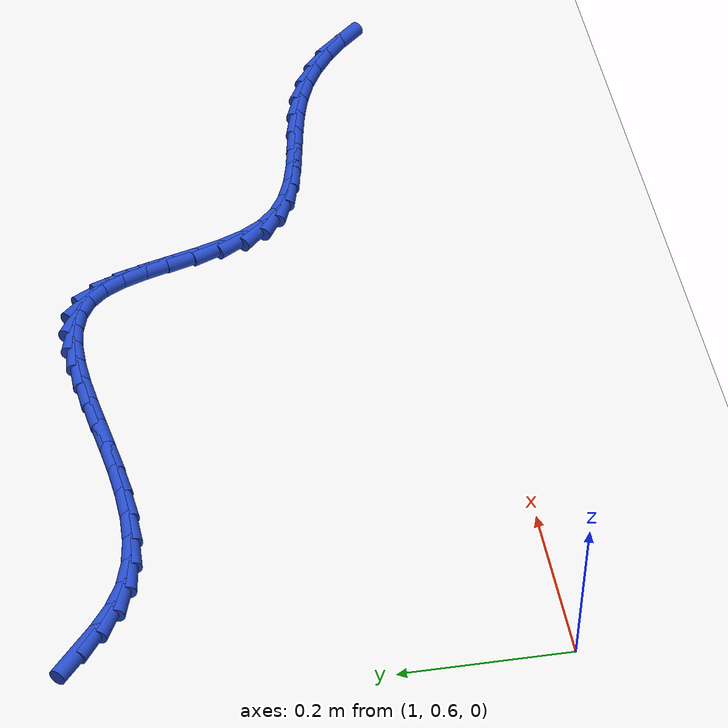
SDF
<sdf version="1.6">
 <world name="default">
  <model name="ground_plane">
   <static>1</static>
   <link name="link">
    <collision name="collision">
     <geometry><plane><normal>0 0 1</normal><size>100 100</size></plane></geometry>
     <surface><friction><ode><mu>100</mu><mu2>50</mu2></ode></friction></surface>
    </collision>
    <visual name="visual">
     <cast_shadows>0</cast_shadows>
     <geometry><plane><normal>0 0 1</normal><size>100 100</size></plane></geometry>
     <material>
      <script><uri>file://media/materials/scripts/gazebo.material</uri><name>Gazebo/WhiteGlow</name></script>
     </material>
    </visual>
   </link>
  </model>
  <model name="line">
   <link name="link_55">
    <pose>1.0755747861341562 1.1382320605853902 0.01 0 1.57 -0.7107506771846369</pose>
    <collision name="collision">
     <geometry><cylinder><radius>0.01</radius><length>0.08</length></cylinder></geometry>
    </collision>
    <visual name="visual">
     <material>
      <script><name>Gazebo/Blue</name><uri>file://media/materials/scripts/gazebo.material</uri></script>
     </material>
     <geometry><cylinder><radius>0.01</radius><length>0.08</length></cylinder></geometry>
    </visual>
   </link>
   <link name="link_56">
    <pose>1.101643030284589 1.115791609423741 0.01 0 1.57 -0.6357924272160159</pose>
    <collision name="collision">
     <geometry><cylinder><radius>0.01</radius><length>0.08</length></cylinder></geometry>
    </collision>
    <visual name="visual">
     <material>
      <script><name>Gazebo/Blue</name><uri>file://media/materials/scripts/gazebo.material</uri></script>
     </material>
     <geometry><cylinder><radius>0.01</radius><length>0.08</length></cylinder></geometry>
    </visual>
   </link>
   <link name="link_57">
    <pose>1.1292929913588372 1.0953852694056572 0.01 0 1.57 -0.4900527705464352</pose>
    <collision name="collision">
     <geometry><cylinder><radius>0.01</radius><length>0.08</length></cylinder></geometry>
    </collision>
    <visual name="visual">
     <material>
      <script><name>Gazebo/Blue</name><uri>file://media/materials/scripts/gazebo.material</uri></script>
     </material>
     <geometry><cylinder><radius>0.01</radius><length>0.08</length></cylinder></geometry>
    </visual>
   </link>
   <link name="link_58">
    <pose>1.1591211371965457 1.0794732680540715 0.01 0 1.57 -0.30864110166584946</pose>
    <collision name="collision">
     <geometry><cylinder><radius>0.01</radius><length>0.08</length></cylinder></geometry>
    </collision>
    <visual name="visual">
     <material>
      <script><name>Gazebo/Blue</name><uri>file://media/materials/scripts/gazebo.material</uri></script>
     </material>
     <geometry><cylinder><radius>0.01</radius><length>0.08</length></cylinder></geometry>
    </visual>
   </link>
   <link name="link_59">
    <pose>1.1913093194147997 1.0692107156601955 0.01 0 1.57 -0.15479637146300426</pose>
    <collision name="collision">
     <geometry><cylinder><radius>0.01</radius><length>0.08</length></cylinder></geometry>
    </collision>
    <visual name="visual">
     <material>
      <script><name>Gazebo/Blue</name><uri>file://media/materials/scripts/gazebo.material</uri></script>
     </material>
     <geometry><cylinder><radius>0.01</radius><length>0.08</length></cylinder></geometry>
    </visual>
   </link>
   <link name="link_60">
    <pose>1.2254456969182623 1.0638839133679794 0.01 0 1.57 -0.03503644360958951</pose>
    <collision name="collision">
     <geometry><cylinder><radius>0.01</radius><length>0.08</length></cylinder></geometry>
    </collision>
    <visual name="visual">
     <material>
      <script><name>Gazebo/Blue</name><uri>file://media/materials/scripts/gazebo.material</uri></script>
     </material>
     <geometry><cylinder><radius>0.01</radius><length>0.08</length></cylinder></geometry>
    </visual>
   </link>
   <link name="link_61">
    <pose>1.2610726810801538 1.0626351595343433 0.01 0 1.57 0.053728732022189224</pose>
    <collision name="collision">
     <geometry><cylinder><radius>0.01</radius><length>0.08</length></cylinder></geometry>
    </collision>
    <visual name="visual">
     <material>
      <script><name>Gazebo/Blue</name><uri>file://media/materials/scripts/gazebo.material</uri></script>
     </material>
     <geometry><cylinder><radius>0.01</radius><length>0.08</length></cylinder></geometry>
    </visual>
   </link>
   <link name="link_62">
    <pose>1.2977326832736926 1.064606752516207 0.01 0 1.57 0.11587943171663884</pose>
    <collision name="collision">
     <geometry><cylinder><radius>0.01</radius><length>0.08</length></cylinder></geometry>
    </collision>
    <visual name="visual">
     <material>
      <script><name>Gazebo/Blue</name><uri>file://media/materials/scripts/gazebo.material</uri></script>
     </material>
     <geometry><cylinder><radius>0.01</radius><length>0.08</length></cylinder></geometry>
    </visual>
   </link>
   <link name="link_63">
    <pose>1.3349681148720989 1.0689409906704912 0.01 0 1.57 0.15506816042027194</pose>
    <collision name="collision">
     <geometry><cylinder><radius>0.01</radius><length>0.08</length></cylinder></geometry>
    </collision>
    <visual name="visual">
     <material>
      <script><name>Gazebo/Blue</name><uri>file://media/materials/scripts/gazebo.material</uri></script>
     </material>
     <geometry><cylinder><radius>0.01</radius><length>0.08</length></cylinder></geometry>
    </visual>
   </link>
   <link name="link_64">
    <pose>1.3723213872485907 1.074780172354115 0.01 0 1.57 0.1734830740059691</pose>
    <collision name="collision">
     <geometry><cylinder><radius>0.01</radius><length>0.08</length></cylinder></geometry>
    </collision>
    <visual name="visual">
     <material>
      <script><name>Gazebo/Blue</name><uri>file://media/materials/scripts/gazebo.material</uri></script>
     </material>
     <geometry><cylinder><radius>0.01</radius><length>0.08</length></cylinder></geometry>
    </visual>
   </link>
   <link name="link_65">
    <pose>1.4093349117763887 1.0812665959239998 0.01 0 1.57 0.1715876228042831</pose>
    <collision name="collision">
     <geometry><cylinder><radius>0.01</radius><length>0.08</length></cylinder></geometry>
    </collision>
    <visual name="visual">
     <material>
      <script><name>Gazebo/Blue</name><uri>file://media/materials/scripts/gazebo.material</uri></script>
     </material>
     <geometry><cylinder><radius>0.01</radius><length>0.08</length></cylinder></geometry>
    </visual>
   </link>
   <link name="link_66">
    <pose>1.445551099828712 1.0875425597370647 0.01 0 1.57 0.1478719134858487</pose>
    <collision name="collision">
     <geometry><cylinder><radius>0.01</radius><length>0.08</length></cylinder></geometry>
    </collision>
    <visual name="visual">
     <material>
      <script><name>Gazebo/Blue</name><uri>file://media/materials/scripts/gazebo.material</uri></script>
     </material>
     <geometry><cylinder><radius>0.01</radius><length>0.08</length></cylinder></geometry>
    </visual>
   </link>
   <link name="link_67">
    <pose>1.48051236277878 1.0927503621502306 0.01 0 1.57 0.09838993190267431</pose>
    <collision name="collision">
     <geometry><cylinder><radius>0.01</radius><length>0.08</length></cylinder></geometry>
    </collision>
    <visual name="visual">
     <material>
      <script><name>Gazebo/Blue</name><uri>file://media/materials/scripts/gazebo.material</uri></script>
     </material>
     <geometry><cylinder><radius>0.01</radius><length>0.08</length></cylinder></geometry>
    </visual>
   </link>
   <link name="link_68">
    <pose>1.513761111999812 1.0960323015204174 0.01 0 1.57 0.016034545317960506</pose>
    <collision name="collision">
     <geometry><cylinder><radius>0.01</radius><length>0.08</length></cylinder></geometry>
    </collision>
    <visual name="visual">
     <material>
      <script><name>Gazebo/Blue</name><uri>file://media/materials/scripts/gazebo.material</uri></script>
     </material>
     <geometry><cylinder><radius>0.01</radius><length>0.08</length></cylinder></geometry>
    </visual>
   </link>
   <link name="link_69">
    <pose>1.5448397588650271 1.0965306762045448 0.01 0 1.57 -0.11002091675937706</pose>
    <collision name="collision">
     <geometry><cylinder><radius>0.01</radius><length>0.08</length></cylinder></geometry>
    </collision>
    <visual name="visual">
     <material>
      <script><name>Gazebo/Blue</name><uri>file://media/materials/scripts/gazebo.material</uri></script>
     </material>
     <geometry><cylinder><radius>0.01</radius><length>0.08</length></cylinder></geometry>
    </visual>
   </link>
   <link name="link_70">
    <pose>1.5732907147476451 1.0933877845595334 0.01 0 1.57 -0.2926194399520623</pose>
    <collision name="collision">
     <geometry><cylinder><radius>0.01</radius><length>0.08</length></cylinder></geometry>
    </collision>
    <visual name="visual">
     <material>
      <script><name>Gazebo/Blue</name><uri>file://media/materials/scripts/gazebo.material</uri></script>
     </material>
     <geometry><cylinder><radius>0.01</radius><length>0.08</length></cylinder></geometry>
    </visual>
   </link>
   <link name="link_71">
    <pose>1.5986563910208855 1.0857459249423036 0.01 0 1.57 -0.5372071749215995</pose>
    <collision name="collision">
     <geometry><cylinder><radius>0.01</radius><length>0.08</length></cylinder></geometry>
    </collision>
    <visual name="visual">
     <material>
      <script><name>Gazebo/Blue</name><uri>file://media/materials/scripts/gazebo.material</uri></script>
     </material>
     <geometry><cylinder><radius>0.01</radius><length>0.08</length></cylinder></geometry>
    </visual>
   </link>
   <link name="link_72">
    <pose>1.6204791990579672 1.0727473957097748 0.01 0 1.57 -0.8224400972214115</pose>
    <collision name="collision">
     <geometry><cylinder><radius>0.01</radius><length>0.08</length></cylinder></geometry>
    </collision>
    <visual name="visual">
     <material>
      <script><name>Gazebo/Blue</name><uri>file://media/materials/scripts/gazebo.material</uri></script>
     </material>
     <geometry><cylinder><radius>0.01</radius><length>0.08</length></cylinder></geometry>
    </visual>
   </link>
   <link name="link_73">
    <pose>1.6383087406810088 1.0535455107085474 0.01 0 1.57 -1.0672424212627662</pose>
    <collision name="collision">
     <geometry><cylinder><radius>0.01</radius><length>0.08</length></cylinder></geometry>
    </collision>
    <visual name="visual">
     <material>
      <script><name>Gazebo/Blue</name><uri>file://media/materials/scripts/gazebo.material</uri></script>
     </material>
     <geometry><cylinder><radius>0.01</radius><length>0.08</length></cylinder></geometry>
    </visual>
   </link>
   <link name="link_74">
    <pose>1.652278671227364 1.0281883311869247 0.01 0 1.57 -1.2111819096715102</pose>
    <collision name="collision">
     <geometry><cylinder><radius>0.01</radius><length>0.08</length></cylinder></geometry>
    </collision>
    <visual name="visual">
     <material>
      <script><name>Gazebo/Blue</name><uri>file://media/materials/scripts/gazebo.material</uri></script>
     </material>
     <geometry><cylinder><radius>0.01</radius><length>0.08</length></cylinder></geometry>
    </visual>
   </link>
   <link name="link_75">
    <pose>1.6635286808114067 0.9982651247711927 0.01 0 1.57 -1.2808809340595608</pose>
    <collision name="collision">
     <geometry><cylinder><radius>0.01</radius><length>0.08</length></cylinder></geometry>
    </collision>
    <visual name="visual">
     <material>
      <script><name>Gazebo/Blue</name><uri>file://media/materials/scripts/gazebo.material</uri></script>
     </material>
     <geometry><cylinder><radius>0.01</radius><length>0.08</length></cylinder></geometry>
    </visual>
   </link>
   <link name="link_76">
    <pose>1.6732979508051204 0.9655175758472576 0.01 0 1.57 -1.2962737377099787</pose>
    <collision name="collision">
     <geometry><cylinder><radius>0.01</radius><length>0.08</length></cylinder></geometry>
    </collision>
    <visual name="visual">
     <material>
      <script><name>Gazebo/Blue</name><uri>file://media/materials/scripts/gazebo.material</uri></script>
     </material>
     <geometry><cylinder><radius>0.01</radius><length>0.08</length></cylinder></geometry>
    </visual>
   </link>
   <link name="link_77">
    <pose>1.682825662580487 0.9316873688010251 0.01 0 1.57 -1.2635412335321563</pose>
    <collision name="collision">
     <geometry><cylinder><radius>0.01</radius><length>0.08</length></cylinder></geometry>
    </collision>
    <visual name="visual">
     <material>
      <script><name>Gazebo/Blue</name><uri>file://media/materials/scripts/gazebo.material</uri></script>
     </material>
     <geometry><cylinder><radius>0.01</radius><length>0.08</length></cylinder></geometry>
    </visual>
   </link>
   <link name="link_78">
    <pose>1.6933509975094878 0.8985161880183997 0.01 0 1.57 -1.1776370423078908</pose>
    <collision name="collision">
     <geometry><cylinder><radius>0.01</radius><length>0.08</length></cylinder></geometry>
    </collision>
    <visual name="visual">
     <material>
      <script><name>Gazebo/Blue</name><uri>file://media/materials/scripts/gazebo.material</uri></script>
     </material>
     <geometry><cylinder><radius>0.01</radius><length>0.08</length></cylinder></geometry>
    </visual>
   </link>
   <link name="link_79">
    <pose>1.7061131369641056 0.8677457178852884 0.01 0 1.57 -1.023193186918059</pose>
    <collision name="collision">
     <geometry><cylinder><radius>0.01</radius><length>0.08</length></cylinder></geometry>
    </collision>
    <visual name="visual">
     <material>
      <script><name>Gazebo/Blue</name><uri>file://media/materials/scripts/gazebo.material</uri></script>
     </material>
     <geometry><cylinder><radius>0.01</radius><length>0.08</length></cylinder></geometry>
    </visual>
   </link>
   <link name="link_80">
    <pose>1.7223512623163224 0.8411176427875953 0.01 0 1.57 -0.789614595394106</pose>
    <collision name="collision">
     <geometry><cylinder><radius>0.01</radius><length>0.08</length></cylinder></geometry>
    </collision>
    <visual name="visual">
     <material>
      <script><name>Gazebo/Blue</name><uri>file://media/materials/scripts/gazebo.material</uri></script>
     </material>
     <geometry><cylinder><radius>0.01</radius><length>0.08</length></cylinder></geometry>
    </visual>
   </link>
   <link name="link_81">
    <pose>1.743145431809231 0.8201473753428853 0.01 0 1.57 -0.5566601003847765</pose>
    <collision name="collision">
     <geometry><cylinder><radius>0.01</radius><length>0.08</length></cylinder></geometry>
    </collision>
    <visual name="visual">
     <material>
      <script><name>Gazebo/Blue</name><uri>file://media/materials/scripts/gazebo.material</uri></script>
     </material>
     <geometry><cylinder><radius>0.01</radius><length>0.08</length></cylinder></geometry>
    </visual>
   </link>
   <link name="link_82">
    <pose>1.76827908080252 0.8045065411922556 0.01 0 1.57 -0.38317019445696415</pose>
    <collision name="collision">
     <geometry><cylinder><radius>0.01</radius><length>0.08</length></cylinder></geometry>
    </collision>
    <visual name="visual">
     <material>
      <script><name>Gazebo/Blue</name><uri>file://media/materials/scripts/gazebo.material</uri></script>
     </material>
     <geometry><cylinder><radius>0.01</radius><length>0.08</length></cylinder></geometry>
    </visual>
   </link>
   <link name="link_83">
    <pose>1.7969037011812574 0.7929681476018859 0.01 0 1.57 -0.27049728993500377</pose>
    <collision name="collision">
     <geometry><cylinder><radius>0.01</radius><length>0.08</length></cylinder></geometry>
    </collision>
    <visual name="visual">
     <material>
      <script><name>Gazebo/Blue</name><uri>file://media/materials/scripts/gazebo.material</uri></script>
     </material>
     <geometry><cylinder><radius>0.01</radius><length>0.08</length></cylinder></geometry>
    </visual>
   </link>
   <link name="link_84">
    <pose>1.8281665382837275 0.7842991632836813 0.01 0 1.57 -0.2096703374839424</pose>
    <collision name="collision">
     <geometry><cylinder><radius>0.01</radius><length>0.08</length></cylinder></geometry>
    </collision>
    <visual name="visual">
     <material>
      <script><name>Gazebo/Blue</name><uri>file://media/materials/scripts/gazebo.material</uri></script>
     </material>
     <geometry><cylinder><radius>0.01</radius><length>0.08</length></cylinder></geometry>
    </visual>
   </link>
   <link name="link_85">
    <pose>1.861214837448216 0.7772665569495478 0.01 0 1.57 -0.1926672878413611</pose>
    <collision name="collision">
     <geometry><cylinder><radius>0.01</radius><length>0.08</length></cylinder></geometry>
    </collision>
    <visual name="visual">
     <material>
      <script><name>Gazebo/Blue</name><uri>file://media/materials/scripts/gazebo.material</uri></script>
     </material>
     <geometry><cylinder><radius>0.01</radius><length>0.08</length></cylinder></geometry>
    </visual>
   </link>
   <link name="link_86">
    <pose>1.8951958440130063 0.7706372973113904 0.01 0 1.57 -0.21558490034325437</pose>
    <collision name="collision">
     <geometry><cylinder><radius>0.01</radius><length>0.08</length></cylinder></geometry>
    </collision>
    <visual name="visual">
     <material>
      <script><name>Gazebo/Blue</name><uri>file://media/materials/scripts/gazebo.material</uri></script>
     </material>
     <geometry><cylinder><radius>0.01</radius><length>0.08</length></cylinder></geometry>
    </visual>
   </link>
   <link name="link_87">
    <pose>1.9292568033163848 0.7631783530811147 0.01 0 1.57 -0.27859842074691027</pose>
    <collision name="collision">
     <geometry><cylinder><radius>0.01</radius><length>0.08</length></cylinder></geometry>
    </collision>
    <visual name="visual">
     <material>
      <script><name>Gazebo/Blue</name><uri>file://media/materials/scripts/gazebo.material</uri></script>
     </material>
     <geometry><cylinder><radius>0.01</radius><length>0.08</length></cylinder></geometry>
    </visual>
   </link>
   <link name="link_88">
    <pose>1.9625449606966345 0.7536566929706261 0.01 0 1.57 -0.38331644213271615</pose>
    <collision name="collision">
     <geometry><cylinder><radius>0.01</radius><length>0.08</length></cylinder></geometry>
    </collision>
    <visual name="visual">
     <material>
      <script><name>Gazebo/Blue</name><uri>file://media/materials/scripts/gazebo.material</uri></script>
     </material>
     <geometry><cylinder><radius>0.01</radius><length>0.08</length></cylinder></geometry>
    </visual>
   </link>
   <link name="link_89">
    <pose>1.9942279810291224 0.7408800919865076 0.01 0 1.57 -0.5062118793524274</pose>
    <collision name="collision">
     <geometry><cylinder><radius>0.01</radius><length>0.08</length></cylinder></geometry>
    </collision>
    <visual name="visual">
     <material>
      <script><name>Gazebo/Blue</name><uri>file://media/materials/scripts/gazebo.material</uri></script>
     </material>
     <geometry><cylinder><radius>0.01</radius><length>0.08</length></cylinder></geometry>
    </visual>
   </link>
   <link name="link_90">
    <pose>2.0238692358673864 0.7244471032637235 0.01 0 1.57 -0.6230400196634134</pose>
    <collision name="collision">
     <geometry><cylinder><radius>0.01</radius><length>0.08</length></cylinder></geometry>
    </collision>
    <visual name="visual">
     <material>
      <script><name>Gazebo/Blue</name><uri>file://media/materials/scripts/gazebo.material</uri></script>
     </material>
     <geometry><cylinder><radius>0.01</radius><length>0.08</length></cylinder></geometry>
    </visual>
   </link>
   <link name="link_91">
    <pose>2.051390622294713 0.7046727554556632 0.01 0 1.57 -0.7322050636445726</pose>
    <collision name="collision">
     <geometry><cylinder><radius>0.01</radius><length>0.08</length></cylinder></geometry>
    </collision>
    <visual name="visual">
     <material>
      <script><name>Gazebo/Blue</name><uri>file://media/materials/scripts/gazebo.material</uri></script>
     </material>
     <geometry><cylinder><radius>0.01</radius><length>0.08</length></cylinder></geometry>
    </visual>
   </link>
   <link name="link_92">
    <pose>2.076726997997753 0.681897977616793 0.01 0 1.57 -0.833753511895729</pose>
    <collision name="collision">
     <geometry><cylinder><radius>0.01</radius><length>0.08</length></cylinder></geometry>
    </collision>
    <visual name="visual">
     <material>
      <script><name>Gazebo/Blue</name><uri>file://media/materials/scripts/gazebo.material</uri></script>
     </material>
     <geometry><cylinder><radius>0.01</radius><length>0.08</length></cylinder></geometry>
    </visual>
   </link>
  </model>
 </world>
</sdf>
